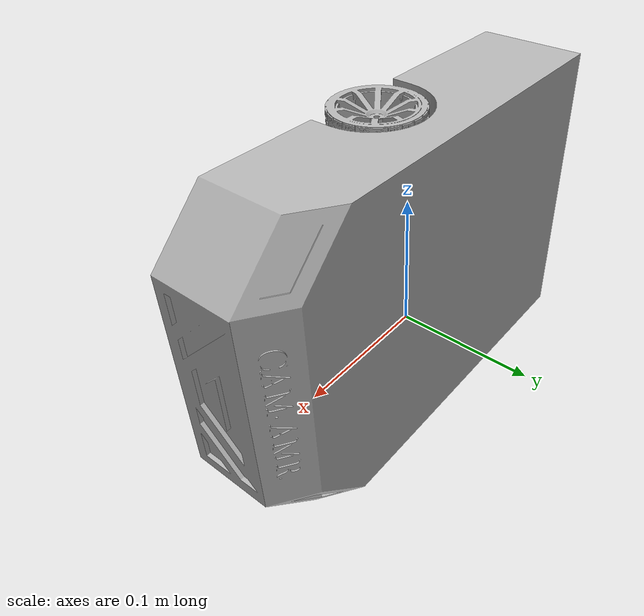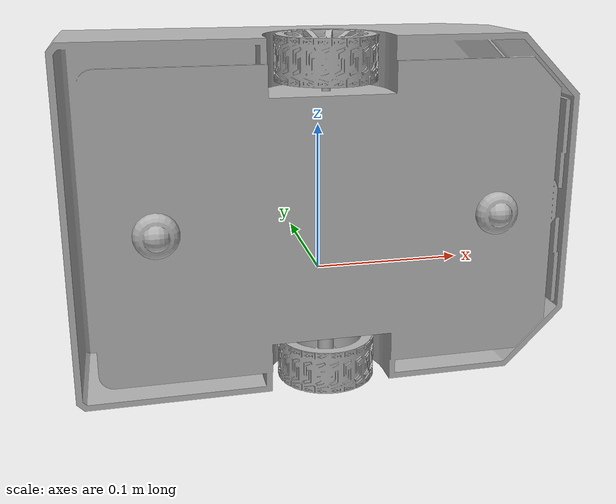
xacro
<?xml version="1.0" ?>
<robot name="AMR" xmlns:xacro="http://www.ros.org/wiki/xacro">

<xacro:include filename="$(find AMR_description)/urdf/materials.xacro" />
<xacro:include filename="$(find AMR_description)/urdf/AMR.trans" />
<xacro:include filename="$(find AMR_description)/urdf/AMR.gazebo" />
<link name="base_link">
  <inertial>
    <origin xyz="-0.004211026222895031 -0.0007864362394611745 0.04634968505013241" rpy="0 0 0"/>
    <mass value="6.706673043299024"/>
    <inertia ixx="0.04496" iyy="0.10774" izz="0.076747" ixy="0.000887" iyz="-2e-06" ixz="2e-06"/>
  </inertial>
  <visual>
    <origin xyz="0 0 0" rpy="0 0 0"/>
    <geometry>
      <mesh filename="package://AMR_description/meshes/base_link.stl" scale="0.001 0.001 0.001"/>
    </geometry>
    <material name="silver"/>
  </visual>
  <collision>
    <origin xyz="0 0 0" rpy="0 0 0"/>
    <geometry>
      <mesh filename="package://AMR_description/meshes/base_link.stl" scale="0.001 0.001 0.001"/>
    </geometry>
  </collision>
</link>

<link name="WL_1">
  <inertial>
    <origin xyz="0.0002952177745435727 0.07506703662094083 -0.12520536764807316" rpy="0 0 0"/>
    <mass value="0.0409491490609718"/>
    <inertia ixx="1.8e-05" iyy="1.8e-05" izz="3e-05" ixy="-0.0" iyz="-0.0" ixz="0.0"/>
  </inertial>
  <visual>
    <origin xyz="0.000634 0.099155 -0.071371" rpy="0 0 0"/>
    <geometry>
      <mesh filename="package://AMR_description/meshes/WL_1.stl" scale="0.001 0.001 0.001"/>
    </geometry>
    <material name="silver"/>
  </visual>
  <collision>
    <origin xyz="0.000634 0.099155 -0.071371" rpy="0 0 0"/>
    <geometry>
      <mesh filename="package://AMR_description/meshes/WL_1.stl" scale="0.001 0.001 0.001"/>
    </geometry>
  </collision>
</link>

<link name="WR_1">
  <inertial>
    <origin xyz="0.00034719436119125843 -0.12494706804889824 0.07617978626716763" rpy="0 0 0"/>
    <mass value="0.0409491490609718"/>
    <inertia ixx="1.8e-05" iyy="1.8e-05" izz="3e-05" ixy="0.0" iyz="0.0" ixz="0.0"/>
  </inertial>
  <visual>
    <origin xyz="0.000634 -0.100845 -0.071371" rpy="0 0 0"/>
    <geometry>
      <mesh filename="package://AMR_description/meshes/WR_1.stl" scale="0.001 0.001 0.001"/>
    </geometry>
    <material name="silver"/>
  </visual>
  <collision>
    <origin xyz="0.000634 -0.100845 -0.071371" rpy="0 0 0"/>
    <geometry>
      <mesh filename="package://AMR_description/meshes/WR_1.stl" scale="0.001 0.001 0.001"/>
    </geometry>
  </collision>
</link>

<joint name="Rev1" type="continuous">
  <origin xyz="-0.000634 -0.099155 0.071371" rpy="0 0 0"/>
  <parent link="base_link"/>
  <child link="WL_1"/>
  <axis xyz="0.0 0.0 -1.0"/>
</joint>

<joint name="Rev2" type="continuous">
  <origin xyz="-0.000634 0.100845 0.071371" rpy="0 0 0"/>
  <parent link="base_link"/>
  <child link="WR_1"/>
  <axis xyz="-0.0 -0.0 1.0"/>
</joint>

</robot>

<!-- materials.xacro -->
<robot name="AMR" xmlns:xacro="http://www.ros.org/wiki/xacro" >

<material name="silver">
  <color rgba="0.700 0.700 0.700 1.000"/>
</material>

</robot>

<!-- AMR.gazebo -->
<robot name="AMR" xmlns:xacro="http://www.ros.org/wiki/xacro" >

<xacro:property name="body_color" value="Gazebo/Silver" />

<gazebo>
  <plugin name="control" filename="libgazebo_ros_control.so"/>
</gazebo>
<gazebo reference="base_link">
  <material>${body_color}</material>
  <mu1>0.2</mu1>
  <mu2>0.2</mu2>
  <selfCollide>true</selfCollide>
  <gravity>true</gravity>
</gazebo>

<gazebo reference="WL_1">
  <material>${body_color}</material>
  <mu1>0.2</mu1>
  <mu2>0.2</mu2>
  <selfCollide>true</selfCollide>
</gazebo>

<gazebo reference="WR_1">
  <material>${body_color}</material>
  <mu1>0.2</mu1>
  <mu2>0.2</mu2>
  <selfCollide>true</selfCollide>
</gazebo>

</robot>
